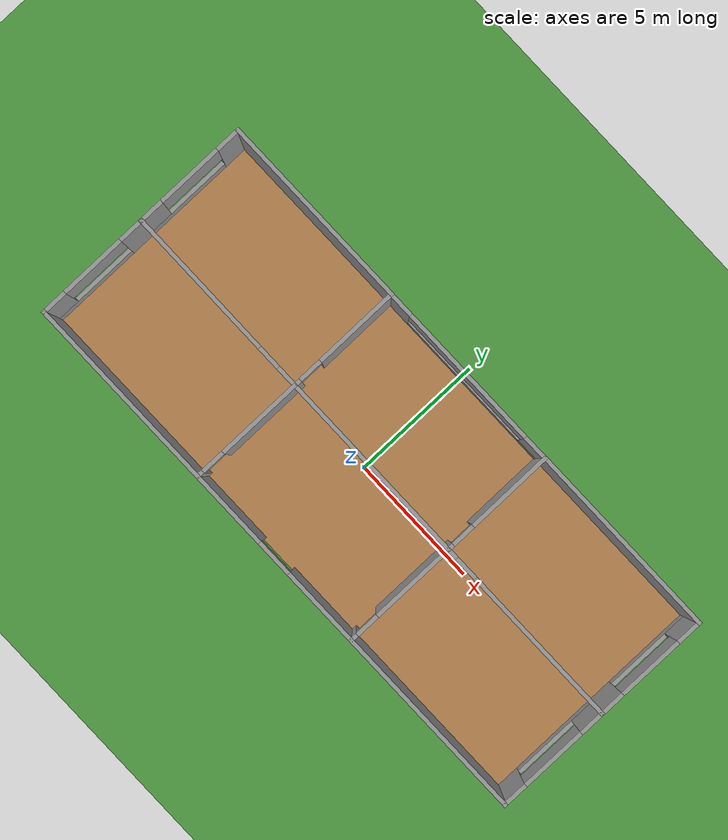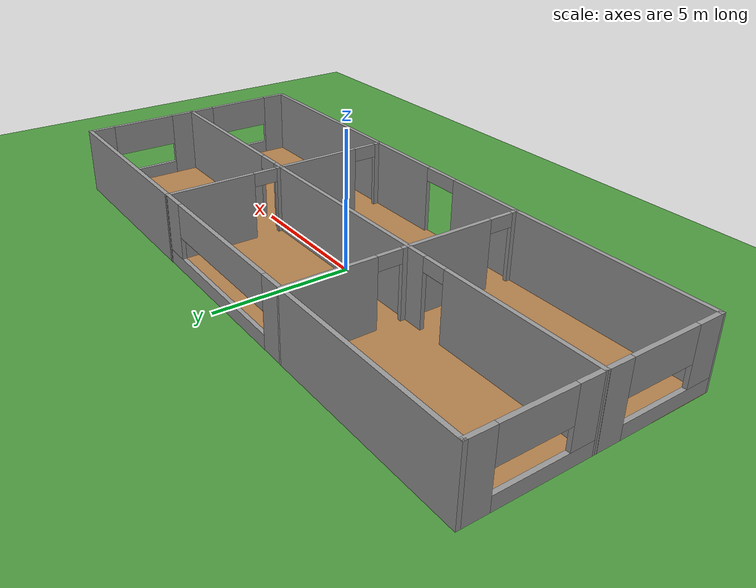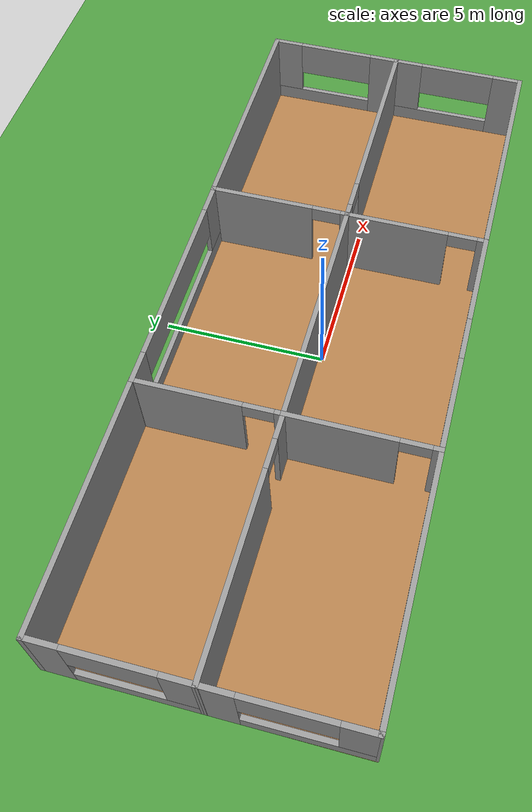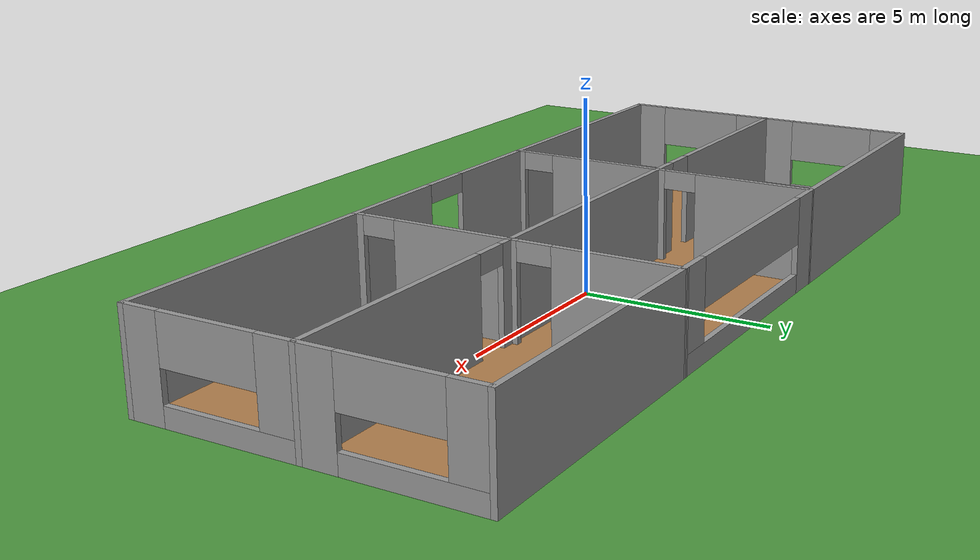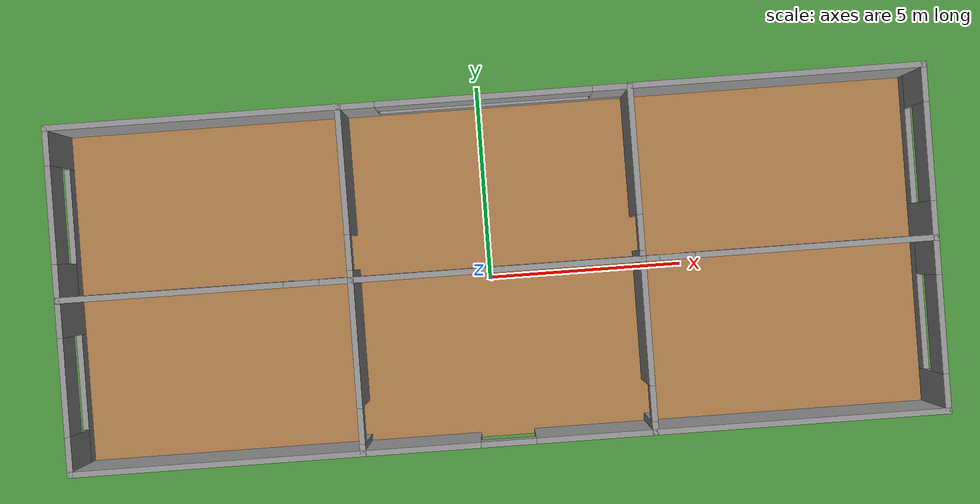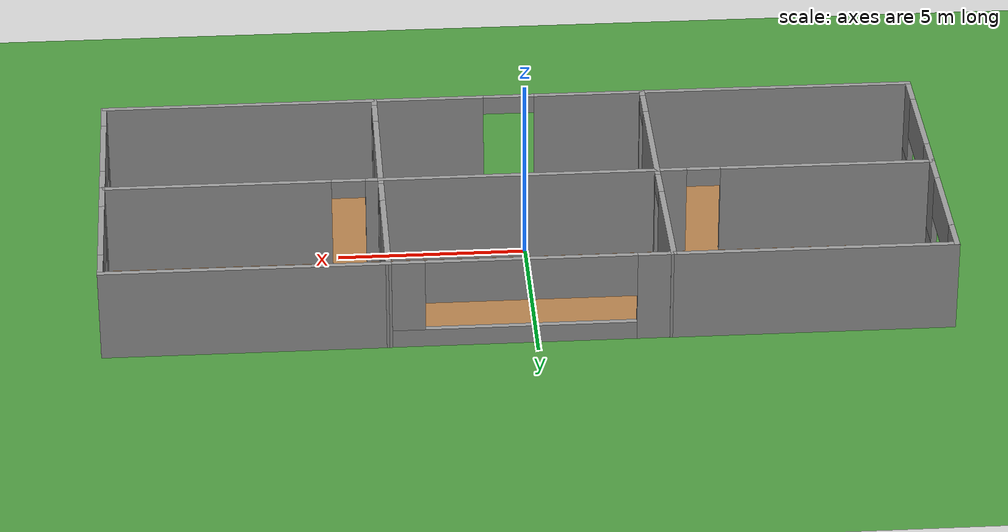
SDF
<sdf version='1.7'>
  <world name='default'>
    <light name='sun' type='directional'>
      <cast_shadows>1</cast_shadows>
      <pose>0 0 10 0 -0 0</pose>
      <diffuse>0.8 0.8 0.8 1</diffuse>
      <specular>0.2 0.2 0.2 1</specular>
      <attenuation>
        <range>1000</range>
        <constant>0.9</constant>
        <linear>0.01</linear>
        <quadratic>0.001</quadratic>
      </attenuation>
      <direction>-0.5 0.1 -0.9</direction>
      <spot>
        <inner_angle>0</inner_angle>
        <outer_angle>0</outer_angle>
        <falloff>0</falloff>
      </spot>
    </light>
    <model name='ground_plane'>
      <static>1</static>
      <link name='link'>
        <collision name='collision'>
          <geometry>
            <plane>
              <normal>0 0 1</normal>
              <size>100 100</size>
            </plane>
          </geometry>
          <surface>
            <contact>
              <collide_bitmask>65535</collide_bitmask>
              <ode/>
            </contact>
            <friction>
              <ode>
                <mu>100</mu>
                <mu2>50</mu2>
              </ode>
              <torsional>
                <ode/>
              </torsional>
            </friction>
            <bounce/>
          </surface>
          <max_contacts>10</max_contacts>
        </collision>
        <visual name='visual'>
          <cast_shadows>0</cast_shadows>
          <geometry>
            <plane>
              <normal>0 0 1</normal>
              <size>100 100</size>
            </plane>
          </geometry>
          <material>
            <script>
              <uri>file://media/materials/scripts/gazebo.material</uri>
              <name>Gazebo/Grass</name>
            </script>
          </material>
        </visual>
        <self_collide>0</self_collide>
        <enable_wind>0</enable_wind>
        <kinematic>0</kinematic>
      </link>
    </model>
    <gravity>0 0 -9.8</gravity>
    <magnetic_field>6e-06 2.3e-05 -4.2e-05</magnetic_field>
    <atmosphere type='adiabatic'/>
    <physics type='ode'>
      <max_step_size>0.001</max_step_size>
      <real_time_factor>1</real_time_factor>
      <real_time_update_rate>1000</real_time_update_rate>
      <ode>
        <solver>
          <type>quick</type>
          <iters>50</iters>
          <precon_iters>0</precon_iters>
          <sor>1.3</sor>
          <use_dynamic_moi_rescaling>1</use_dynamic_moi_rescaling>
        </solver>
        <constraints>
          <cfm>0.00001</cfm>
          <erp>0.2</erp>
          <contact_max_correcting_vel>2000.0</contact_max_correcting_vel>
          <contact_surface_layer>0.01</contact_surface_layer>
        </constraints>
      </ode>
    </physics>
    <scene>
      <ambient>0.4 0.4 0.4 1</ambient>
      <background>0.7 0.7 0.7 1</background>
      <shadows>0</shadows>  <!-- T2: disabled to reduce GPU load and free cycles for physics -->
    </scene>
    <audio>
      <device>default</device>
    </audio>
    <wind/>
    <spherical_coordinates>
      <surface_model>EARTH_WGS84</surface_model>
      <latitude_deg>45.0500</latitude_deg>
      <longitude_deg>7.6600</longitude_deg>
      <elevation>0.0</elevation>
      <heading_deg>180.0</heading_deg>
    </spherical_coordinates>
    <model name='floor_wood'>
      <static>1</static>
      <pose>0.168475 0.201006 0.005 0 -0 0</pose>
      <link name='link'>
        <visual name='visual'>
          <geometry>
            <box>
              <size>22.2 8.8 0.01</size>
            </box>
          </geometry>
          <material>
            <script>
              <uri>file://media/materials/scripts/gazebo.material</uri>
              <name>Gazebo/Wood</name>
            </script>
          </material>
        </visual>
        <self_collide>0</self_collide>
        <enable_wind>0</enable_wind>
        <kinematic>0</kinematic>
      </link>
    </model>
    <model name='indoor_outdoor'>
      <pose>0.168475 0.201006 0 0 -0 0</pose>
      <link name='Wall_0'>
        <pose>-3.66967 -2.17507 0 0 -0 1.5708</pose>
        <visual name='Wall_0_Visual_0'>
          <pose>-2.09581 0 1.25 0 -0 0</pose>
          <geometry>
            <box>
              <size>0.308373 0.15 2.5</size>
            </box>
          </geometry>
          <material>
            <script>
              <uri>file://media/materials/scripts/gazebo.material</uri>
              <name>Gazebo/Grey</name>
            </script>
            <ambient>1 1 1 1</ambient>
          </material>
          <meta>
            <layer>0</layer>
          </meta>
        </visual>
        <collision name='Wall_0_Collision_0'>
          <geometry>
            <box>
              <size>0.308373 0.15 2.5</size>
            </box>
          </geometry>
          <pose>-2.09581 0 1.25 0 -0 0</pose>
          <max_contacts>10</max_contacts>
          <surface>
            <contact>
              <ode/>
            </contact>
            <bounce/>
            <friction>
              <torsional>
                <ode/>
              </torsional>
              <ode/>
            </friction>
          </surface>
        </collision>
        <visual name='Wall_0_Visual_1'>
          <pose>0.604187 0 1.25 0 -0 0</pose>
          <geometry>
            <box>
              <size>3.29163 0.15 2.5</size>
            </box>
          </geometry>
          <material>
            <script>
              <uri>file://media/materials/scripts/gazebo.material</uri>
              <name>Gazebo/Grey</name>
            </script>
            <ambient>1 1 1 1</ambient>
          </material>
          <meta>
            <layer>0</layer>
          </meta>
        </visual>
        <collision name='Wall_0_Collision_1'>
          <geometry>
            <box>
              <size>3.29163 0.15 2.5</size>
            </box>
          </geometry>
          <pose>0.604187 0 1.25 0 -0 0</pose>
          <max_contacts>10</max_contacts>
          <surface>
            <contact>
              <ode/>
            </contact>
            <bounce/>
            <friction>
              <torsional>
                <ode/>
              </torsional>
              <ode/>
            </friction>
          </surface>
        </collision>
        <visual name='Wall_0_Visual_2'>
          <pose>-1.49163 0 2.25 0 -0 0</pose>
          <geometry>
            <box>
              <size>0.9 0.15 0.5</size>
            </box>
          </geometry>
          <material>
            <script>
              <uri>file://media/materials/scripts/gazebo.material</uri>
              <name>Gazebo/Grey</name>
            </script>
            <ambient>1 1 1 1</ambient>
          </material>
          <meta>
            <layer>0</layer>
          </meta>
        </visual>
        <collision name='Wall_0_Collision_2'>
          <geometry>
            <box>
              <size>0.9 0.15 0.5</size>
            </box>
          </geometry>
          <pose>-1.49163 0 2.25 0 -0 0</pose>
          <max_contacts>10</max_contacts>
          <surface>
            <contact>
              <ode/>
            </contact>
            <bounce/>
            <friction>
              <torsional>
                <ode/>
              </torsional>
              <ode/>
            </friction>
          </surface>
        </collision>
        <self_collide>0</self_collide>
        <enable_wind>0</enable_wind>
        <kinematic>0</kinematic>
      </link>
      <link name='Wall_1'>
        <collision name='Wall_1_Collision'>
          <geometry>
            <box>
              <size>7.5 0.15 2.5</size>
            </box>
          </geometry>
          <pose>0 0 1.25 0 -0 0</pose>
          <max_contacts>10</max_contacts>
          <surface>
            <contact>
              <ode/>
            </contact>
            <bounce/>
            <friction>
              <torsional>
                <ode/>
              </torsional>
              <ode/>
            </friction>
          </surface>
        </collision>
        <visual name='Wall_1_Visual'>
          <pose>0 0 1.25 0 -0 0</pose>
          <geometry>
            <box>
              <size>7.5 0.15 2.5</size>
            </box>
          </geometry>
          <material>
            <script>
              <uri>file://media/materials/scripts/gazebo.material</uri>
              <name>Gazebo/Grey</name>
            </script>
            <ambient>1 1 1 1</ambient>
          </material>
          <meta>
            <layer>0</layer>
          </meta>
        </visual>
        <pose>0.005328 -6.5e-05 0 0 -0 0</pose>
        <self_collide>0</self_collide>
        <enable_wind>0</enable_wind>
        <kinematic>0</kinematic>
      </link>
      <link name='Wall_10'>
        <pose>3.67133 2.17494 0 0 -0 -1.56666</pose>
        <visual name='Wall_10_Visual_0'>
          <pose>-0.595223 0 1.25 0 -0 0</pose>
          <geometry>
            <box>
              <size>3.30959 0.15 2.5</size>
            </box>
          </geometry>
          <material>
            <script>
              <uri>file://media/materials/scripts/gazebo.material</uri>
              <name>Gazebo/Grey</name>
            </script>
            <ambient>1 1 1 1</ambient>
          </material>
          <meta>
            <layer>0</layer>
          </meta>
        </visual>
        <collision name='Wall_10_Collision_0'>
          <geometry>
            <box>
              <size>3.30959 0.15 2.5</size>
            </box>
          </geometry>
          <pose>-0.595223 0 1.25 0 -0 0</pose>
          <max_contacts>10</max_contacts>
          <surface>
            <contact>
              <ode/>
            </contact>
            <bounce/>
            <friction>
              <torsional>
                <ode/>
              </torsional>
              <ode/>
            </friction>
          </surface>
        </collision>
        <visual name='Wall_10_Visual_1'>
          <pose>2.1048 0 1.25 0 -0 0</pose>
          <geometry>
            <box>
              <size>0.290445 0.15 2.5</size>
            </box>
          </geometry>
          <material>
            <script>
              <uri>file://media/materials/scripts/gazebo.material</uri>
              <name>Gazebo/Grey</name>
            </script>
            <ambient>1 1 1 1</ambient>
          </material>
          <meta>
            <layer>0</layer>
          </meta>
        </visual>
        <collision name='Wall_10_Collision_1'>
          <geometry>
            <box>
              <size>0.290445 0.15 2.5</size>
            </box>
          </geometry>
          <pose>2.1048 0 1.25 0 -0 0</pose>
          <max_contacts>10</max_contacts>
          <surface>
            <contact>
              <ode/>
            </contact>
            <bounce/>
            <friction>
              <torsional>
                <ode/>
              </torsional>
              <ode/>
            </friction>
          </surface>
        </collision>
        <visual name='Wall_10_Visual_2'>
          <pose>1.50957 0 2.25 0 -0 0</pose>
          <geometry>
            <box>
              <size>0.9 0.15 0.5</size>
            </box>
          </geometry>
          <material>
            <script>
              <uri>file://media/materials/scripts/gazebo.material</uri>
              <name>Gazebo/Grey</name>
            </script>
            <ambient>1 1 1 1</ambient>
          </material>
          <meta>
            <layer>0</layer>
          </meta>
        </visual>
        <collision name='Wall_10_Collision_2'>
          <geometry>
            <box>
              <size>0.9 0.15 0.5</size>
            </box>
          </geometry>
          <pose>1.50957 0 2.25 0 -0 0</pose>
          <max_contacts>10</max_contacts>
          <surface>
            <contact>
              <ode/>
            </contact>
            <bounce/>
            <friction>
              <torsional>
                <ode/>
              </torsional>
              <ode/>
            </friction>
          </surface>
        </collision>
        <self_collide>0</self_collide>
        <enable_wind>0</enable_wind>
        <kinematic>0</kinematic>
      </link>
      <link name='Wall_12'>
        <pose>7.35533 -6.5e-05 0 0 -0 0</pose>
        <visual name='Wall_12_Visual_0'>
          <pose>-3.50953 0 1.25 0 -0 0</pose>
          <geometry>
            <box>
              <size>0.48094 0.15 2.5</size>
            </box>
          </geometry>
          <material>
            <script>
              <uri>file://media/materials/scripts/gazebo.material</uri>
              <name>Gazebo/Grey</name>
            </script>
            <ambient>1 1 1 1</ambient>
          </material>
          <meta>
            <layer>0</layer>
          </meta>
        </visual>
        <collision name='Wall_12_Collision_0'>
          <geometry>
            <box>
              <size>0.48094 0.15 2.5</size>
            </box>
          </geometry>
          <pose>-3.50953 0 1.25 0 -0 0</pose>
          <max_contacts>10</max_contacts>
          <surface>
            <contact>
              <ode/>
            </contact>
            <bounce/>
            <friction>
              <torsional>
                <ode/>
              </torsional>
              <ode/>
            </friction>
          </surface>
        </collision>
        <visual name='Wall_12_Visual_1'>
          <pose>0.69047 0 1.25 0 -0 0</pose>
          <geometry>
            <box>
              <size>6.11906 0.15 2.5</size>
            </box>
          </geometry>
          <material>
            <script>
              <uri>file://media/materials/scripts/gazebo.material</uri>
              <name>Gazebo/Grey</name>
            </script>
            <ambient>1 1 1 1</ambient>
          </material>
          <meta>
            <layer>0</layer>
          </meta>
        </visual>
        <collision name='Wall_12_Collision_1'>
          <geometry>
            <box>
              <size>6.11906 0.15 2.5</size>
            </box>
          </geometry>
          <pose>0.69047 0 1.25 0 -0 0</pose>
          <max_contacts>10</max_contacts>
          <surface>
            <contact>
              <ode/>
            </contact>
            <bounce/>
            <friction>
              <torsional>
                <ode/>
              </torsional>
              <ode/>
            </friction>
          </surface>
        </collision>
        <visual name='Wall_12_Visual_2'>
          <pose>-2.81906 0 2.25 0 -0 0</pose>
          <geometry>
            <box>
              <size>0.9 0.15 0.5</size>
            </box>
          </geometry>
          <material>
            <script>
              <uri>file://media/materials/scripts/gazebo.material</uri>
              <name>Gazebo/Grey</name>
            </script>
            <ambient>1 1 1 1</ambient>
          </material>
          <meta>
            <layer>0</layer>
          </meta>
        </visual>
        <collision name='Wall_12_Collision_2'>
          <geometry>
            <box>
              <size>0.9 0.15 0.5</size>
            </box>
          </geometry>
          <pose>-2.81906 0 2.25 0 -0 0</pose>
          <max_contacts>10</max_contacts>
          <surface>
            <contact>
              <ode/>
            </contact>
            <bounce/>
            <friction>
              <torsional>
                <ode/>
              </torsional>
              <ode/>
            </friction>
          </surface>
        </collision>
        <self_collide>0</self_collide>
        <enable_wind>0</enable_wind>
        <kinematic>0</kinematic>
      </link>
      <link name='Wall_13'>
        <pose>11.0303 2.17494 0 0 -0 1.5708</pose>
        <visual name='Wall_13_Visual_0'>
          <pose>-1.74891 0 1.25 0 -0 0</pose>
          <geometry>
            <box>
              <size>1.00217 0.15 2.5</size>
            </box>
          </geometry>
          <material>
            <script>
              <uri>file://media/materials/scripts/gazebo.material</uri>
              <name>Gazebo/Grey</name>
            </script>
            <ambient>1 1 1 1</ambient>
          </material>
          <meta>
            <layer>0</layer>
          </meta>
        </visual>
        <collision name='Wall_13_Collision_0'>
          <geometry>
            <box>
              <size>1.00217 0.15 2.5</size>
            </box>
          </geometry>
          <pose>-1.74891 0 1.25 0 -0 0</pose>
          <max_contacts>10</max_contacts>
          <surface>
            <contact>
              <ode/>
            </contact>
            <bounce/>
            <friction>
              <torsional>
                <ode/>
              </torsional>
              <ode/>
            </friction>
          </surface>
        </collision>
        <visual name='Wall_13_Visual_1'>
          <pose>0.501087 0 0.25 0 -0 0</pose>
          <geometry>
            <box>
              <size>3.49783 0.15 0.5</size>
            </box>
          </geometry>
          <material>
            <script>
              <uri>file://media/materials/scripts/gazebo.material</uri>
              <name>Gazebo/Grey</name>
            </script>
            <ambient>1 1 1 1</ambient>
          </material>
          <meta>
            <layer>0</layer>
          </meta>
        </visual>
        <collision name='Wall_13_Collision_1'>
          <geometry>
            <box>
              <size>3.49783 0.15 0.5</size>
            </box>
          </geometry>
          <pose>0.501087 0 0.25 0 -0 0</pose>
          <max_contacts>10</max_contacts>
          <surface>
            <contact>
              <ode/>
            </contact>
            <bounce/>
            <friction>
              <torsional>
                <ode/>
              </torsional>
              <ode/>
            </friction>
          </surface>
        </collision>
        <visual name='Wall_13_Visual_2'>
          <pose>1.74331 0 1.5 0 -0 0</pose>
          <geometry>
            <box>
              <size>1.01339 0.15 2</size>
            </box>
          </geometry>
          <material>
            <script>
              <uri>file://media/materials/scripts/gazebo.material</uri>
              <name>Gazebo/Grey</name>
            </script>
            <ambient>1 1 1 1</ambient>
          </material>
          <meta>
            <layer>0</layer>
          </meta>
        </visual>
        <collision name='Wall_13_Collision_2'>
          <geometry>
            <box>
              <size>1.01339 0.15 2</size>
            </box>
          </geometry>
          <pose>1.74331 0 1.5 0 -0 0</pose>
          <max_contacts>10</max_contacts>
          <surface>
            <contact>
              <ode/>
            </contact>
            <bounce/>
            <friction>
              <torsional>
                <ode/>
              </torsional>
              <ode/>
            </friction>
          </surface>
        </collision>
        <visual name='Wall_13_Visual_3'>
          <pose>-0.005607 0 1.9 0 -0 0</pose>
          <geometry>
            <box>
              <size>2.48444 0.15 1.2</size>
            </box>
          </geometry>
          <material>
            <script>
              <uri>file://media/materials/scripts/gazebo.material</uri>
              <name>Gazebo/Grey</name>
            </script>
            <ambient>1 1 1 1</ambient>
          </material>
          <meta>
            <layer>0</layer>
          </meta>
        </visual>
        <collision name='Wall_13_Collision_3'>
          <geometry>
            <box>
              <size>2.48444 0.15 1.2</size>
            </box>
          </geometry>
          <pose>-0.005607 0 1.9 0 -0 0</pose>
          <max_contacts>10</max_contacts>
          <surface>
            <contact>
              <ode/>
            </contact>
            <bounce/>
            <friction>
              <torsional>
                <ode/>
              </torsional>
              <ode/>
            </friction>
          </surface>
        </collision>
        <self_collide>0</self_collide>
        <enable_wind>0</enable_wind>
        <kinematic>0</kinematic>
      </link>
      <link name='Wall_14'>
        <collision name='Wall_14_Collision'>
          <geometry>
            <box>
              <size>7.51805 0.15 2.5</size>
            </box>
          </geometry>
          <pose>0 0 1.25 0 -0 0</pose>
          <max_contacts>10</max_contacts>
          <surface>
            <contact>
              <ode/>
            </contact>
            <bounce/>
            <friction>
              <torsional>
                <ode/>
              </torsional>
              <ode/>
            </friction>
          </surface>
        </collision>
        <visual name='Wall_14_Visual'>
          <pose>0 0 1.25 0 -0 0</pose>
          <geometry>
            <box>
              <size>7.51805 0.15 2.5</size>
            </box>
          </geometry>
          <material>
            <script>
              <uri>file://media/materials/scripts/gazebo.material</uri>
              <name>Gazebo/Grey</name>
            </script>
            <ambient>1 1 1 1</ambient>
          </material>
          <meta>
            <layer>0</layer>
          </meta>
        </visual>
        <pose>7.34633 4.34994 0 0 -0 -3.14159</pose>
        <self_collide>0</self_collide>
        <enable_wind>0</enable_wind>
        <kinematic>0</kinematic>
      </link>
      <link name='Wall_16'>
        <collision name='Wall_16_Collision'>
          <geometry>
            <box>
              <size>7.49252 0.15 2.5</size>
            </box>
          </geometry>
          <pose>0 0 1.25 0 -0 0</pose>
          <max_contacts>10</max_contacts>
          <surface>
            <contact>
              <ode/>
            </contact>
            <bounce/>
            <friction>
              <torsional>
                <ode/>
              </torsional>
              <ode/>
            </friction>
          </surface>
        </collision>
        <visual name='Wall_16_Visual'>
          <pose>0 0 1.25 0 -0 0</pose>
          <geometry>
            <box>
              <size>7.49252 0.15 2.5</size>
            </box>
          </geometry>
          <material>
            <script>
              <uri>file://media/materials/scripts/gazebo.material</uri>
              <name>Gazebo/Grey</name>
            </script>
            <ambient>1 1 1 1</ambient>
          </material>
          <meta>
            <layer>0</layer>
          </meta>
        </visual>
        <pose>-7.35891 4.34994 0 0 -0 3.14159</pose>
        <self_collide>0</self_collide>
        <enable_wind>0</enable_wind>
        <kinematic>0</kinematic>
      </link>
      <link name='Wall_18'>
        <pose>-11.0301 2.17494 0 0 -0 -1.5708</pose>
        <visual name='Wall_18_Visual_0'>
          <pose>-1.73743 0 1.25 0 -0 0</pose>
          <geometry>
            <box>
              <size>1.00419 0.15 2.5</size>
            </box>
          </geometry>
          <material>
            <script>
              <uri>file://media/materials/scripts/gazebo.material</uri>
              <name>Gazebo/Grey</name>
            </script>
            <ambient>1 1 1 1</ambient>
          </material>
          <meta>
            <layer>0</layer>
          </meta>
        </visual>
        <collision name='Wall_18_Collision_0'>
          <geometry>
            <box>
              <size>1.00419 0.15 2.5</size>
            </box>
          </geometry>
          <pose>-1.73743 0 1.25 0 -0 0</pose>
          <max_contacts>10</max_contacts>
          <surface>
            <contact>
              <ode/>
            </contact>
            <bounce/>
            <friction>
              <torsional>
                <ode/>
              </torsional>
              <ode/>
            </friction>
          </surface>
        </collision>
        <visual name='Wall_18_Visual_1'>
          <pose>0.502097 0 0.25 0 -0 0</pose>
          <geometry>
            <box>
              <size>3.47487 0.15 0.5</size>
            </box>
          </geometry>
          <material>
            <script>
              <uri>file://media/materials/scripts/gazebo.material</uri>
              <name>Gazebo/Grey</name>
            </script>
            <ambient>1 1 1 1</ambient>
          </material>
          <meta>
            <layer>0</layer>
          </meta>
        </visual>
        <collision name='Wall_18_Collision_1'>
          <geometry>
            <box>
              <size>3.47487 0.15 0.5</size>
            </box>
          </geometry>
          <pose>0.502097 0 0.25 0 -0 0</pose>
          <max_contacts>10</max_contacts>
          <surface>
            <contact>
              <ode/>
            </contact>
            <bounce/>
            <friction>
              <torsional>
                <ode/>
              </torsional>
              <ode/>
            </friction>
          </surface>
        </collision>
        <visual name='Wall_18_Visual_2'>
          <pose>1.7396 0 1.5 0 -0 0</pose>
          <geometry>
            <box>
              <size>0.999862 0.15 2</size>
            </box>
          </geometry>
          <material>
            <script>
              <uri>file://media/materials/scripts/gazebo.material</uri>
              <name>Gazebo/Grey</name>
            </script>
            <ambient>1 1 1 1</ambient>
          </material>
          <meta>
            <layer>0</layer>
          </meta>
        </visual>
        <collision name='Wall_18_Collision_2'>
          <geometry>
            <box>
              <size>0.999862 0.15 2</size>
            </box>
          </geometry>
          <pose>1.7396 0 1.5 0 -0 0</pose>
          <max_contacts>10</max_contacts>
          <surface>
            <contact>
              <ode/>
            </contact>
            <bounce/>
            <friction>
              <torsional>
                <ode/>
              </torsional>
              <ode/>
            </friction>
          </surface>
        </collision>
        <visual name='Wall_18_Visual_3'>
          <pose>0.002166 0 1.9 0 -0 0</pose>
          <geometry>
            <box>
              <size>2.47501 0.15 1.2</size>
            </box>
          </geometry>
          <material>
            <script>
              <uri>file://media/materials/scripts/gazebo.material</uri>
              <name>Gazebo/Grey</name>
            </script>
            <ambient>1 1 1 1</ambient>
          </material>
          <meta>
            <layer>0</layer>
          </meta>
        </visual>
        <collision name='Wall_18_Collision_3'>
          <geometry>
            <box>
              <size>2.47501 0.15 1.2</size>
            </box>
          </geometry>
          <pose>0.002166 0 1.9 0 -0 0</pose>
          <max_contacts>10</max_contacts>
          <surface>
            <contact>
              <ode/>
            </contact>
            <bounce/>
            <friction>
              <torsional>
                <ode/>
              </torsional>
              <ode/>
            </friction>
          </surface>
        </collision>
        <self_collide>0</self_collide>
        <enable_wind>0</enable_wind>
        <kinematic>0</kinematic>
      </link>
      <link name='Wall_19'>
        <pose>-7.34467 0.010404 0 0 -0 -0.002841</pose>
        <visual name='Wall_19_Visual_0'>
          <pose>-0.887491 0 1.25 0 -0 0</pose>
          <geometry>
            <box>
              <size>5.74599 0.15 2.5</size>
            </box>
          </geometry>
          <material>
            <script>
              <uri>file://media/materials/scripts/gazebo.material</uri>
              <name>Gazebo/Grey</name>
            </script>
            <ambient>1 1 1 1</ambient>
          </material>
          <meta>
            <layer>0</layer>
          </meta>
        </visual>
        <collision name='Wall_19_Collision_0'>
          <geometry>
            <box>
              <size>5.74599 0.15 2.5</size>
            </box>
          </geometry>
          <pose>-0.887491 0 1.25 0 -0 0</pose>
          <max_contacts>10</max_contacts>
          <surface>
            <contact>
              <ode/>
            </contact>
            <bounce/>
            <friction>
              <torsional>
                <ode/>
              </torsional>
              <ode/>
            </friction>
          </surface>
        </collision>
        <visual name='Wall_19_Visual_1'>
          <pose>3.32299 0 1.25 0 -0 0</pose>
          <geometry>
            <box>
              <size>0.874982 0.15 2.5</size>
            </box>
          </geometry>
          <material>
            <script>
              <uri>file://media/materials/scripts/gazebo.material</uri>
              <name>Gazebo/Grey</name>
            </script>
            <ambient>1 1 1 1</ambient>
          </material>
          <meta>
            <layer>0</layer>
          </meta>
        </visual>
        <collision name='Wall_19_Collision_1'>
          <geometry>
            <box>
              <size>0.874982 0.15 2.5</size>
            </box>
          </geometry>
          <pose>3.32299 0 1.25 0 -0 0</pose>
          <max_contacts>10</max_contacts>
          <surface>
            <contact>
              <ode/>
            </contact>
            <bounce/>
            <friction>
              <torsional>
                <ode/>
              </torsional>
              <ode/>
            </friction>
          </surface>
        </collision>
        <visual name='Wall_19_Visual_2'>
          <pose>2.4355 0 2.25 0 -0 0</pose>
          <geometry>
            <box>
              <size>0.9 0.15 0.5</size>
            </box>
          </geometry>
          <material>
            <script>
              <uri>file://media/materials/scripts/gazebo.material</uri>
              <name>Gazebo/Grey</name>
            </script>
            <ambient>1 1 1 1</ambient>
          </material>
          <meta>
            <layer>0</layer>
          </meta>
        </visual>
        <collision name='Wall_19_Collision_2'>
          <geometry>
            <box>
              <size>0.9 0.15 0.5</size>
            </box>
          </geometry>
          <pose>2.4355 0 2.25 0 -0 0</pose>
          <max_contacts>10</max_contacts>
          <surface>
            <contact>
              <ode/>
            </contact>
            <bounce/>
            <friction>
              <torsional>
                <ode/>
              </torsional>
              <ode/>
            </friction>
          </surface>
        </collision>
        <self_collide>0</self_collide>
        <enable_wind>0</enable_wind>
        <kinematic>0</kinematic>
      </link>
      <link name='Wall_2'>
        <pose>3.68033 -2.17507 0 0 -0 -1.5708</pose>
        <visual name='Wall_2_Visual_0'>
          <pose>-0.621941 0 1.25 0 -0 0</pose>
          <geometry>
            <box>
              <size>3.25612 0.15 2.5</size>
            </box>
          </geometry>
          <material>
            <script>
              <uri>file://media/materials/scripts/gazebo.material</uri>
              <name>Gazebo/Grey</name>
            </script>
            <ambient>1 1 1 1</ambient>
          </material>
          <meta>
            <layer>0</layer>
          </meta>
        </visual>
        <collision name='Wall_2_Collision_0'>
          <geometry>
            <box>
              <size>3.25612 0.15 2.5</size>
            </box>
          </geometry>
          <pose>-0.621941 0 1.25 0 -0 0</pose>
          <max_contacts>10</max_contacts>
          <surface>
            <contact>
              <ode/>
            </contact>
            <bounce/>
            <friction>
              <torsional>
                <ode/>
              </torsional>
              <ode/>
            </friction>
          </surface>
        </collision>
        <visual name='Wall_2_Visual_1'>
          <pose>2.07806 0 1.25 0 -0 0</pose>
          <geometry>
            <box>
              <size>0.343882 0.15 2.5</size>
            </box>
          </geometry>
          <material>
            <script>
              <uri>file://media/materials/scripts/gazebo.material</uri>
              <name>Gazebo/Grey</name>
            </script>
            <ambient>1 1 1 1</ambient>
          </material>
          <meta>
            <layer>0</layer>
          </meta>
        </visual>
        <collision name='Wall_2_Collision_1'>
          <geometry>
            <box>
              <size>0.343882 0.15 2.5</size>
            </box>
          </geometry>
          <pose>2.07806 0 1.25 0 -0 0</pose>
          <max_contacts>10</max_contacts>
          <surface>
            <contact>
              <ode/>
            </contact>
            <bounce/>
            <friction>
              <torsional>
                <ode/>
              </torsional>
              <ode/>
            </friction>
          </surface>
        </collision>
        <visual name='Wall_2_Visual_2'>
          <pose>1.45612 0 2.25 0 -0 0</pose>
          <geometry>
            <box>
              <size>0.9 0.15 0.5</size>
            </box>
          </geometry>
          <material>
            <script>
              <uri>file://media/materials/scripts/gazebo.material</uri>
              <name>Gazebo/Grey</name>
            </script>
            <ambient>1 1 1 1</ambient>
          </material>
          <meta>
            <layer>0</layer>
          </meta>
        </visual>
        <collision name='Wall_2_Collision_2'>
          <geometry>
            <box>
              <size>0.9 0.15 0.5</size>
            </box>
          </geometry>
          <pose>1.45612 0 2.25 0 -0 0</pose>
          <max_contacts>10</max_contacts>
          <surface>
            <contact>
              <ode/>
            </contact>
            <bounce/>
            <friction>
              <torsional>
                <ode/>
              </torsional>
              <ode/>
            </friction>
          </surface>
        </collision>
        <self_collide>0</self_collide>
        <enable_wind>0</enable_wind>
        <kinematic>0</kinematic>
      </link>
      <link name='Wall_21'>
        <pose>-11.0249 -2.1646 0 0 -0 -1.5684</pose>
        <visual name='Wall_21_Visual_0'>
          <pose>-1.75213 0 1.25 0 -0 0</pose>
          <geometry>
            <box>
              <size>1.01669 0.15 2.5</size>
            </box>
          </geometry>
          <material>
            <script>
              <uri>file://media/materials/scripts/gazebo.material</uri>
              <name>Gazebo/Grey</name>
            </script>
            <ambient>1 1 1 1</ambient>
          </material>
          <meta>
            <layer>0</layer>
          </meta>
        </visual>
        <collision name='Wall_21_Collision_0'>
          <geometry>
            <box>
              <size>1.01669 0.15 2.5</size>
            </box>
          </geometry>
          <pose>-1.75213 0 1.25 0 -0 0</pose>
          <max_contacts>10</max_contacts>
          <surface>
            <contact>
              <ode/>
            </contact>
            <bounce/>
            <friction>
              <torsional>
                <ode/>
              </torsional>
              <ode/>
            </friction>
          </surface>
        </collision>
        <visual name='Wall_21_Visual_1'>
          <pose>0.508344 0 0.25 0 -0 0</pose>
          <geometry>
            <box>
              <size>3.50426 0.15 0.5</size>
            </box>
          </geometry>
          <material>
            <script>
              <uri>file://media/materials/scripts/gazebo.material</uri>
              <name>Gazebo/Grey</name>
            </script>
            <ambient>1 1 1 1</ambient>
          </material>
          <meta>
            <layer>0</layer>
          </meta>
        </visual>
        <collision name='Wall_21_Collision_1'>
          <geometry>
            <box>
              <size>3.50426 0.15 0.5</size>
            </box>
          </geometry>
          <pose>0.508344 0 0.25 0 -0 0</pose>
          <max_contacts>10</max_contacts>
          <surface>
            <contact>
              <ode/>
            </contact>
            <bounce/>
            <friction>
              <torsional>
                <ode/>
              </torsional>
              <ode/>
            </friction>
          </surface>
        </collision>
        <visual name='Wall_21_Visual_2'>
          <pose>1.7522 0 1.5 0 -0 0</pose>
          <geometry>
            <box>
              <size>1.01656 0.15 2</size>
            </box>
          </geometry>
          <material>
            <script>
              <uri>file://media/materials/scripts/gazebo.material</uri>
              <name>Gazebo/Grey</name>
            </script>
            <ambient>1 1 1 1</ambient>
          </material>
          <meta>
            <layer>0</layer>
          </meta>
        </visual>
        <collision name='Wall_21_Collision_2'>
          <geometry>
            <box>
              <size>1.01656 0.15 2</size>
            </box>
          </geometry>
          <pose>1.7522 0 1.5 0 -0 0</pose>
          <max_contacts>10</max_contacts>
          <surface>
            <contact>
              <ode/>
            </contact>
            <bounce/>
            <friction>
              <torsional>
                <ode/>
              </torsional>
              <ode/>
            </friction>
          </surface>
        </collision>
        <visual name='Wall_21_Visual_3'>
          <pose>6.5e-05 0 1.9 0 -0 0</pose>
          <geometry>
            <box>
              <size>2.4877 0.15 1.2</size>
            </box>
          </geometry>
          <material>
            <script>
              <uri>file://media/materials/scripts/gazebo.material</uri>
              <name>Gazebo/Grey</name>
            </script>
            <ambient>1 1 1 1</ambient>
          </material>
          <meta>
            <layer>0</layer>
          </meta>
        </visual>
        <collision name='Wall_21_Collision_3'>
          <geometry>
            <box>
              <size>2.4877 0.15 1.2</size>
            </box>
          </geometry>
          <pose>6.5e-05 0 1.9 0 -0 0</pose>
          <max_contacts>10</max_contacts>
          <surface>
            <contact>
              <ode/>
            </contact>
            <bounce/>
            <friction>
              <torsional>
                <ode/>
              </torsional>
              <ode/>
            </friction>
          </surface>
        </collision>
        <self_collide>0</self_collide>
        <enable_wind>0</enable_wind>
        <kinematic>0</kinematic>
      </link>
      <link name='Wall_22'>
        <collision name='Wall_22_Collision'>
          <geometry>
            <box>
              <size>7.5 0.15 2.5</size>
            </box>
          </geometry>
          <pose>0 0 1.25 0 -0 0</pose>
          <max_contacts>10</max_contacts>
          <surface>
            <contact>
              <ode/>
            </contact>
            <bounce/>
            <friction>
              <torsional>
                <ode/>
              </torsional>
              <ode/>
            </friction>
          </surface>
        </collision>
        <visual name='Wall_22_Visual'>
          <pose>0 0 1.25 0 -0 0</pose>
          <geometry>
            <box>
              <size>7.5 0.15 2.5</size>
            </box>
          </geometry>
          <material>
            <script>
              <uri>file://media/materials/scripts/gazebo.material</uri>
              <name>Gazebo/Grey</name>
            </script>
            <ambient>1 1 1 1</ambient>
          </material>
          <meta>
            <layer>0</layer>
          </meta>
        </visual>
        <pose>-7.34467 -4.35006 0 0 -0 0</pose>
        <self_collide>0</self_collide>
        <enable_wind>0</enable_wind>
        <kinematic>0</kinematic>
      </link>
      <link name='Wall_24'>
        <collision name='Wall_24_Collision'>
          <geometry>
            <box>
              <size>7.5 0.15 2.5</size>
            </box>
          </geometry>
          <pose>0 0 1.25 0 -0 0</pose>
          <max_contacts>10</max_contacts>
          <surface>
            <contact>
              <ode/>
            </contact>
            <bounce/>
            <friction>
              <torsional>
                <ode/>
              </torsional>
              <ode/>
            </friction>
          </surface>
        </collision>
        <visual name='Wall_24_Visual'>
          <pose>0 0 1.25 0 -0 0</pose>
          <geometry>
            <box>
              <size>7.5 0.15 2.5</size>
            </box>
          </geometry>
          <material>
            <script>
              <uri>file://media/materials/scripts/gazebo.material</uri>
              <name>Gazebo/Grey</name>
            </script>
            <ambient>1 1 1 1</ambient>
          </material>
          <meta>
            <layer>0</layer>
          </meta>
        </visual>
        <pose>7.35533 -4.35006 0 0 -0 0</pose>
        <self_collide>0</self_collide>
        <enable_wind>0</enable_wind>
        <kinematic>0</kinematic>
      </link>
      <link name='Wall_25'>
        <pose>11.0303 -2.17507 0 0 -0 1.5708</pose>
        <visual name='Wall_25_Visual_0'>
          <pose>-1.74696 0 1.25 0 -0 0</pose>
          <geometry>
            <box>
              <size>1.00608 0.15 2.5</size>
            </box>
          </geometry>
          <material>
            <script>
              <uri>file://media/materials/scripts/gazebo.material</uri>
              <name>Gazebo/Grey</name>
            </script>
            <ambient>1 1 1 1</ambient>
          </material>
          <meta>
            <layer>0</layer>
          </meta>
        </visual>
        <collision name='Wall_25_Collision_0'>
          <geometry>
            <box>
              <size>1.00608 0.15 2.5</size>
            </box>
          </geometry>
          <pose>-1.74696 0 1.25 0 -0 0</pose>
          <max_contacts>10</max_contacts>
          <surface>
            <contact>
              <ode/>
            </contact>
            <bounce/>
            <friction>
              <torsional>
                <ode/>
              </torsional>
              <ode/>
            </friction>
          </surface>
        </collision>
        <visual name='Wall_25_Visual_1'>
          <pose>0.503042 0 0.25 0 -0 0</pose>
          <geometry>
            <box>
              <size>3.49392 0.15 0.5</size>
            </box>
          </geometry>
          <material>
            <script>
              <uri>file://media/materials/scripts/gazebo.material</uri>
              <name>Gazebo/Grey</name>
            </script>
            <ambient>1 1 1 1</ambient>
          </material>
          <meta>
            <layer>0</layer>
          </meta>
        </visual>
        <collision name='Wall_25_Collision_1'>
          <geometry>
            <box>
              <size>3.49392 0.15 0.5</size>
            </box>
          </geometry>
          <pose>0.503042 0 0.25 0 -0 0</pose>
          <max_contacts>10</max_contacts>
          <surface>
            <contact>
              <ode/>
            </contact>
            <bounce/>
            <friction>
              <torsional>
                <ode/>
              </torsional>
              <ode/>
            </friction>
          </surface>
        </collision>
        <visual name='Wall_25_Visual_2'>
          <pose>1.74689 0 1.5 0 -0 0</pose>
          <geometry>
            <box>
              <size>1.00621 0.15 2</size>
            </box>
          </geometry>
          <material>
            <script>
              <uri>file://media/materials/scripts/gazebo.material</uri>
              <name>Gazebo/Grey</name>
            </script>
            <ambient>1 1 1 1</ambient>
          </material>
          <meta>
            <layer>0</layer>
          </meta>
        </visual>
        <collision name='Wall_25_Collision_2'>
          <geometry>
            <box>
              <size>1.00621 0.15 2</size>
            </box>
          </geometry>
          <pose>1.74689 0 1.5 0 -0 0</pose>
          <max_contacts>10</max_contacts>
          <surface>
            <contact>
              <ode/>
            </contact>
            <bounce/>
            <friction>
              <torsional>
                <ode/>
              </torsional>
              <ode/>
            </friction>
          </surface>
        </collision>
        <visual name='Wall_25_Visual_3'>
          <pose>-6.5e-05 0 1.9 0 -0 0</pose>
          <geometry>
            <box>
              <size>2.4877 0.15 1.2</size>
            </box>
          </geometry>
          <material>
            <script>
              <uri>file://media/materials/scripts/gazebo.material</uri>
              <name>Gazebo/Grey</name>
            </script>
            <ambient>1 1 1 1</ambient>
          </material>
          <meta>
            <layer>0</layer>
          </meta>
        </visual>
        <collision name='Wall_25_Collision_3'>
          <geometry>
            <box>
              <size>2.4877 0.15 1.2</size>
            </box>
          </geometry>
          <pose>-6.5e-05 0 1.9 0 -0 0</pose>
          <max_contacts>10</max_contacts>
          <surface>
            <contact>
              <ode/>
            </contact>
            <bounce/>
            <friction>
              <torsional>
                <ode/>
              </torsional>
              <ode/>
            </friction>
          </surface>
        </collision>
        <self_collide>0</self_collide>
        <enable_wind>0</enable_wind>
        <kinematic>0</kinematic>
      </link>
      <link name='Wall_27'>
        <pose>0.005328 -4.35006 0 0 -0 0</pose>
        <visual name='Wall_27_Visual_0'>
          <pose>-2.22984 0 1.25 0 -0 0</pose>
          <geometry>
            <box>
              <size>3.04032 0.15 2.5</size>
            </box>
          </geometry>
          <material>
            <script>
              <uri>file://media/materials/scripts/gazebo.material</uri>
              <name>Gazebo/Grey</name>
            </script>
            <ambient>1 1 1 1</ambient>
          </material>
          <meta>
            <layer>0</layer>
          </meta>
        </visual>
        <collision name='Wall_27_Collision_0'>
          <geometry>
            <box>
              <size>3.04032 0.15 2.5</size>
            </box>
          </geometry>
          <pose>-2.22984 0 1.25 0 -0 0</pose>
          <max_contacts>10</max_contacts>
          <surface>
            <contact>
              <ode/>
            </contact>
            <bounce/>
            <friction>
              <torsional>
                <ode/>
              </torsional>
              <ode/>
            </friction>
          </surface>
        </collision>
        <visual name='Wall_27_Visual_1'>
          <pose>2.21718 0 1.25 0 -0 0</pose>
          <geometry>
            <box>
              <size>3.06564 0.15 2.5</size>
            </box>
          </geometry>
          <material>
            <script>
              <uri>file://media/materials/scripts/gazebo.material</uri>
              <name>Gazebo/Grey</name>
            </script>
            <ambient>1 1 1 1</ambient>
          </material>
          <meta>
            <layer>0</layer>
          </meta>
        </visual>
        <collision name='Wall_27_Collision_1'>
          <geometry>
            <box>
              <size>3.06564 0.15 2.5</size>
            </box>
          </geometry>
          <pose>2.21718 0 1.25 0 -0 0</pose>
          <max_contacts>10</max_contacts>
          <surface>
            <contact>
              <ode/>
            </contact>
            <bounce/>
            <friction>
              <torsional>
                <ode/>
              </torsional>
              <ode/>
            </friction>
          </surface>
        </collision>
        <visual name='Wall_27_Visual_2'>
          <pose>-0.012663 0 2.25 0 -0 0</pose>
          <geometry>
            <box>
              <size>1.39404 0.15 0.5</size>
            </box>
          </geometry>
          <material>
            <script>
              <uri>file://media/materials/scripts/gazebo.material</uri>
              <name>Gazebo/Grey</name>
            </script>
            <ambient>1 1 1 1</ambient>
          </material>
          <meta>
            <layer>0</layer>
          </meta>
        </visual>
        <collision name='Wall_27_Collision_2'>
          <geometry>
            <box>
              <size>1.39404 0.15 0.5</size>
            </box>
          </geometry>
          <pose>-0.012663 0 2.25 0 -0 0</pose>
          <max_contacts>10</max_contacts>
          <surface>
            <contact>
              <ode/>
            </contact>
            <bounce/>
            <friction>
              <torsional>
                <ode/>
              </torsional>
              <ode/>
            </friction>
          </surface>
        </collision>
        <self_collide>0</self_collide>
        <enable_wind>0</enable_wind>
        <kinematic>0</kinematic>
      </link>
      <link name='Wall_8'>
        <pose>-3.67867 2.17494 0 0 -0 1.57493</pose>
        <visual name='Wall_8_Visual_0'>
          <pose>-2.08715 0 1.25 0 -0 0</pose>
          <geometry>
            <box>
              <size>0.325735 0.15 2.5</size>
            </box>
          </geometry>
          <material>
            <script>
              <uri>file://media/materials/scripts/gazebo.material</uri>
              <name>Gazebo/Grey</name>
            </script>
            <ambient>1 1 1 1</ambient>
          </material>
          <meta>
            <layer>0</layer>
          </meta>
        </visual>
        <collision name='Wall_8_Collision_0'>
          <geometry>
            <box>
              <size>0.325735 0.15 2.5</size>
            </box>
          </geometry>
          <pose>-2.08715 0 1.25 0 -0 0</pose>
          <max_contacts>10</max_contacts>
          <surface>
            <contact>
              <ode/>
            </contact>
            <bounce/>
            <friction>
              <torsional>
                <ode/>
              </torsional>
              <ode/>
            </friction>
          </surface>
        </collision>
        <visual name='Wall_8_Visual_1'>
          <pose>0.612867 0 1.25 0 -0 0</pose>
          <geometry>
            <box>
              <size>3.2743 0.15 2.5</size>
            </box>
          </geometry>
          <material>
            <script>
              <uri>file://media/materials/scripts/gazebo.material</uri>
              <name>Gazebo/Grey</name>
            </script>
            <ambient>1 1 1 1</ambient>
          </material>
          <meta>
            <layer>0</layer>
          </meta>
        </visual>
        <collision name='Wall_8_Collision_1'>
          <geometry>
            <box>
              <size>3.2743 0.15 2.5</size>
            </box>
          </geometry>
          <pose>0.612867 0 1.25 0 -0 0</pose>
          <max_contacts>10</max_contacts>
          <surface>
            <contact>
              <ode/>
            </contact>
            <bounce/>
            <friction>
              <torsional>
                <ode/>
              </torsional>
              <ode/>
            </friction>
          </surface>
        </collision>
        <visual name='Wall_8_Visual_2'>
          <pose>-1.47428 0 2.25 0 -0 0</pose>
          <geometry>
            <box>
              <size>0.9 0.15 0.5</size>
            </box>
          </geometry>
          <material>
            <script>
              <uri>file://media/materials/scripts/gazebo.material</uri>
              <name>Gazebo/Grey</name>
            </script>
            <ambient>1 1 1 1</ambient>
          </material>
          <meta>
            <layer>0</layer>
          </meta>
        </visual>
        <collision name='Wall_8_Collision_2'>
          <geometry>
            <box>
              <size>0.9 0.15 0.5</size>
            </box>
          </geometry>
          <pose>-1.47428 0 2.25 0 -0 0</pose>
          <max_contacts>10</max_contacts>
          <surface>
            <contact>
              <ode/>
            </contact>
            <bounce/>
            <friction>
              <torsional>
                <ode/>
              </torsional>
              <ode/>
            </friction>
          </surface>
        </collision>
        <self_collide>0</self_collide>
        <enable_wind>0</enable_wind>
        <kinematic>0</kinematic>
      </link>
      <link name='Wall_9'>
        <pose>-0.012673 4.34093 0 0 -0 0</pose>
        <visual name='Wall_9_Visual_0'>
          <pose>-3.24656 0 1.25 0 -0 0</pose>
          <geometry>
            <box>
              <size>1.00688 0.15 2.5</size>
            </box>
          </geometry>
          <material>
            <script>
              <uri>file://media/materials/scripts/gazebo.material</uri>
              <name>Gazebo/Grey</name>
            </script>
            <ambient>1 1 1 1</ambient>
          </material>
          <meta>
            <layer>0</layer>
          </meta>
        </visual>
        <collision name='Wall_9_Collision_0'>
          <geometry>
            <box>
              <size>1.00688 0.15 2.5</size>
            </box>
          </geometry>
          <pose>-3.24656 0 1.25 0 -0 0</pose>
          <max_contacts>10</max_contacts>
          <surface>
            <contact>
              <ode/>
            </contact>
            <bounce/>
            <friction>
              <torsional>
                <ode/>
              </torsional>
              <ode/>
            </friction>
          </surface>
        </collision>
        <visual name='Wall_9_Visual_1'>
          <pose>0.503438 0 0.25 0 -0 0</pose>
          <geometry>
            <box>
              <size>6.49312 0.15 0.5</size>
            </box>
          </geometry>
          <material>
            <script>
              <uri>file://media/materials/scripts/gazebo.material</uri>
              <name>Gazebo/Grey</name>
            </script>
            <ambient>1 1 1 1</ambient>
          </material>
          <meta>
            <layer>0</layer>
          </meta>
        </visual>
        <collision name='Wall_9_Collision_1'>
          <geometry>
            <box>
              <size>6.49312 0.15 0.5</size>
            </box>
          </geometry>
          <pose>0.503438 0 0.25 0 -0 0</pose>
          <max_contacts>10</max_contacts>
          <surface>
            <contact>
              <ode/>
            </contact>
            <bounce/>
            <friction>
              <torsional>
                <ode/>
              </torsional>
              <ode/>
            </friction>
          </surface>
        </collision>
        <visual name='Wall_9_Visual_2'>
          <pose>3.24364 0 1.5 0 -0 0</pose>
          <geometry>
            <box>
              <size>1.01272 0.15 2</size>
            </box>
          </geometry>
          <material>
            <script>
              <uri>file://media/materials/scripts/gazebo.material</uri>
              <name>Gazebo/Grey</name>
            </script>
            <ambient>1 1 1 1</ambient>
          </material>
          <meta>
            <layer>0</layer>
          </meta>
        </visual>
        <collision name='Wall_9_Collision_2'>
          <geometry>
            <box>
              <size>1.01272 0.15 2</size>
            </box>
          </geometry>
          <pose>3.24364 0 1.5 0 -0 0</pose>
          <max_contacts>10</max_contacts>
          <surface>
            <contact>
              <ode/>
            </contact>
            <bounce/>
            <friction>
              <torsional>
                <ode/>
              </torsional>
              <ode/>
            </friction>
          </surface>
        </collision>
        <visual name='Wall_9_Visual_3'>
          <pose>-0.00292 0 1.9 0 -0 0</pose>
          <geometry>
            <box>
              <size>5.48041 0.15 1.2</size>
            </box>
          </geometry>
          <material>
            <script>
              <uri>file://media/materials/scripts/gazebo.material</uri>
              <name>Gazebo/Grey</name>
            </script>
            <ambient>1 1 1 1</ambient>
          </material>
          <meta>
            <layer>0</layer>
          </meta>
        </visual>
        <collision name='Wall_9_Collision_3'>
          <geometry>
            <box>
              <size>5.48041 0.15 1.2</size>
            </box>
          </geometry>
          <pose>-0.00292 0 1.9 0 -0 0</pose>
          <max_contacts>10</max_contacts>
          <surface>
            <contact>
              <ode/>
            </contact>
            <bounce/>
            <friction>
              <torsional>
                <ode/>
              </torsional>
              <ode/>
            </friction>
          </surface>
        </collision>
        <self_collide>0</self_collide>
        <enable_wind>0</enable_wind>
        <kinematic>0</kinematic>
      </link>
      <static>1</static>
    </model>
    <gui fullscreen='0'>
      <camera name='user_camera'>
        <pose>-37.2082 -36.1785 52.4143 0 0.7538 0.696354</pose>
        <view_controller>orbit</view_controller>
        <projection_type>perspective</projection_type>
      </camera>
    </gui>
  </world>
</sdf>
